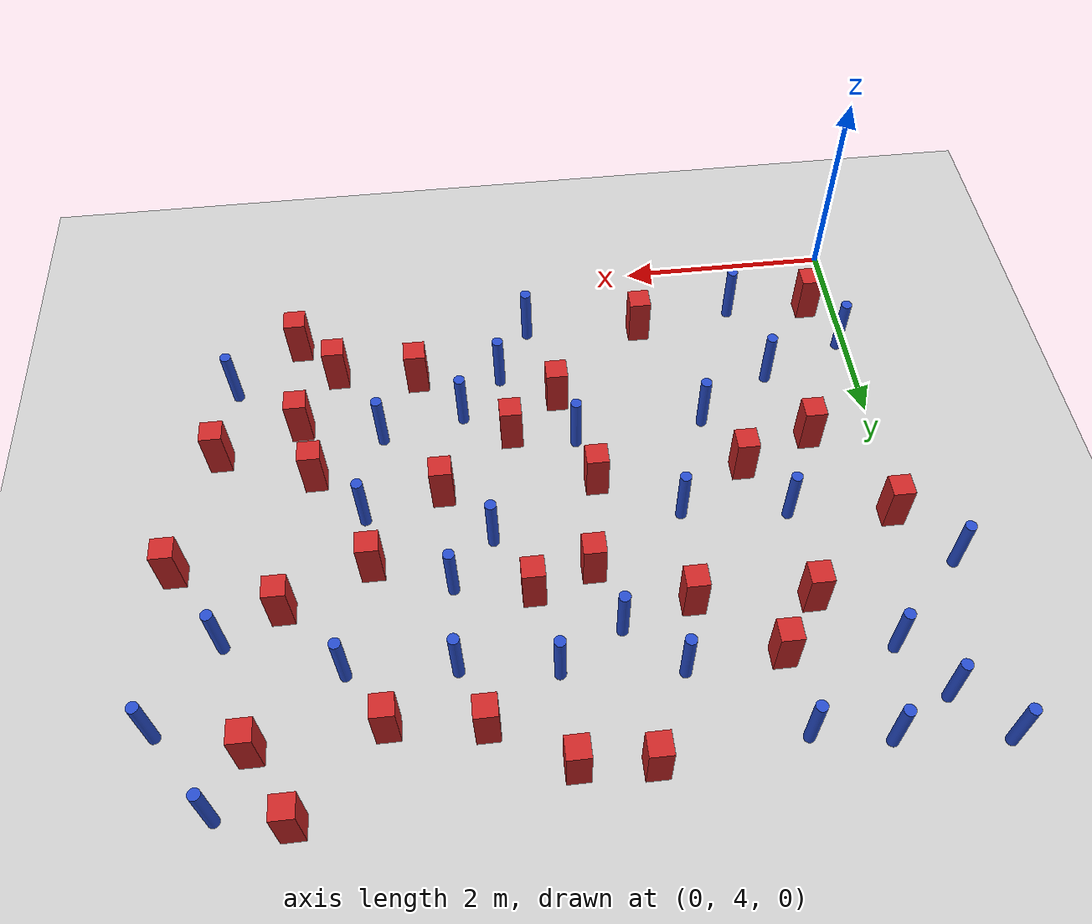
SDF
<sdf version="1.6">
 <world name="default">
  <model name="ground_plane">
   <static>1</static>
   <link name="link">
    <collision name="collision">
     <geometry><plane><normal>0 0 1</normal><size>100 100</size></plane></geometry>
     <surface><friction><ode><mu>100</mu><mu2>50</mu2></ode></friction></surface>
    </collision>
    <visual name="visual">
     <cast_shadows>0</cast_shadows>
     <geometry><plane><normal>0 0 1</normal><size>100 100</size></plane></geometry>
     <material>
      <ambient>1.0 1.0 1.0 1.0</ambient>
      <diffuse>0.8 0.8 0.8 1.0</diffuse>
      <specular>0.01 0.01 0.01 1.000000</specular>
     </material>
    </visual>
   </link>
  </model>
  <model name="square_post_obstacle1">
   <static>true</static>
   <pose>4.21814063579 5.20997985435 -6.11067671241e-07 -5.50515727128e-06 -8.79689657224e-07 2.37013304536e-05</pose>
   <link name="link">
    <pose>0 0 0.25 0 -0 0</pose>
    <inertial>
     <mass>100</mass>
     <inertia>
      <ixx>0.166667</ixx>
      <ixy>0</ixy>
      <ixz>0</ixz>
      <iyy>0.166667</iyy>
      <iyz>0</iyz>
      <izz>0.166667</izz>
     </inertia>
    </inertial>
    <collision name="collision"><geometry><box><size>.2 .2 .5</size></box></geometry></collision>
    <visual name="visual">
     <geometry><box><size>.2 .2 .5</size></box></geometry>
     <material>
      <script><name>Gazebo/Red</name><uri>file://media/materials/scripts/gazebo.material</uri></script>
     </material>
    </visual>
   </link>
  </model>
  <model name="square_post_obstacle2">
   <static>true</static>
   <pose>0.289632002403 4.67580909844 -6.11067671241e-07 -5.50515727128e-06 -8.79689657224e-07 2.37013304536e-05</pose>
   <link name="link">
    <pose>0 0 0.25 0 -0 0</pose>
    <inertial>
     <mass>100</mass>
     <inertia>
      <ixx>0.166667</ixx>
      <ixy>0</ixy>
      <ixz>0</ixz>
      <iyy>0.166667</iyy>
      <iyz>0</iyz>
      <izz>0.166667</izz>
     </inertia>
    </inertial>
    <collision name="collision"><geometry><box><size>.2 .2 .5</size></box></geometry></collision>
    <visual name="visual">
     <geometry><box><size>.2 .2 .5</size></box></geometry>
     <material>
      <script><name>Gazebo/Red</name><uri>file://media/materials/scripts/gazebo.material</uri></script>
     </material>
    </visual>
   </link>
  </model>
  <model name="pole_obstacle6">
   <static>true</static>
   <pose>2.6191119911 8.05276596261 -9.4761961606e-06 5.49618799729e-07 2.36310414e-07 -1.55090534824e-07</pose>
   <link name="link">
    <pose>0 0 0.3 0 -0 0</pose>
    <inertial>
     <mass>1</mass>
     <inertia><ixx>0.145833</ixx><ixy>0</ixy><ixz>0</ixz><iyy>0.145833</iyy><iyz>0</iyz><izz>0.125</izz></inertia>
    </inertial>
    <collision name="collision">
     <geometry><cylinder><radius>0.05</radius><length>.6</length></cylinder></geometry>
    </collision>
    <visual name="visual">
     <geometry><cylinder><radius>0.05</radius><length>.6</length></cylinder></geometry>
     <material>
      <script><name>Gazebo/Blue</name><uri>file://media/materials/scripts/gazebo.material</uri></script>
     </material>
    </visual>
   </link>
  </model>
  <model name="square_post_obstacle11">
   <static>true</static>
   <pose>4.56887856863 8.70819222688 -6.11067671241e-07 -5.50515727128e-06 -8.79689657224e-07 2.37013304536e-05</pose>
   <link name="link">
    <pose>0 0 0.25 0 -0 0</pose>
    <inertial>
     <mass>100</mass>
     <inertia>
      <ixx>0.166667</ixx>
      <ixy>0</ixy>
      <ixz>0</ixz>
      <iyy>0.166667</iyy>
      <iyz>0</iyz>
      <izz>0.166667</izz>
     </inertia>
    </inertial>
    <collision name="collision"><geometry><box><size>.2 .2 .5</size></box></geometry></collision>
    <visual name="visual">
     <geometry><box><size>.2 .2 .5</size></box></geometry>
     <material>
      <script><name>Gazebo/Red</name><uri>file://media/materials/scripts/gazebo.material</uri></script>
     </material>
    </visual>
   </link>
  </model>
  <model name="pole_obstacle12">
   <static>true</static>
   <pose>3.99530567241 7.51076555983 -9.47619616065e-06 5.49618799737e-07 2.36310414049e-07 -1.55090534808e-07</pose>
   <link name="link">
    <pose>0 0 0.3 0 -0 0</pose>
    <inertial>
     <mass>1</mass>
     <inertia><ixx>0.145833</ixx><ixy>0</ixy><ixz>0</ixz><iyy>0.145833</iyy><iyz>0</iyz><izz>0.125</izz></inertia>
    </inertial>
    <collision name="collision">
     <geometry><cylinder><radius>0.05</radius><length>.6</length></cylinder></geometry>
    </collision>
    <visual name="visual">
     <geometry><cylinder><radius>0.05</radius><length>.6</length></cylinder></geometry>
     <material>
      <script><name>Gazebo/Blue</name><uri>file://media/materials/scripts/gazebo.material</uri></script>
     </material>
    </visual>
   </link>
  </model>
  <model name="pole_obstacle18">
   <static>true</static>
   <pose>6.40389700163 8.56753296409 -9.47619616065e-06 5.49618799737e-07 2.36310414065e-07 -1.55090534796e-07</pose>
   <link name="link">
    <pose>0 0 0.3 0 -0 0</pose>
    <inertial>
     <mass>1</mass>
     <inertia><ixx>0.145833</ixx><ixy>0</ixy><ixz>0</ixz><iyy>0.145833</iyy><iyz>0</iyz><izz>0.125</izz></inertia>
    </inertial>
    <collision name="collision">
     <geometry><cylinder><radius>0.05</radius><length>.6</length></cylinder></geometry>
    </collision>
    <visual name="visual">
     <geometry><cylinder><radius>0.05</radius><length>.6</length></cylinder></geometry>
     <material>
      <script><name>Gazebo/Blue</name><uri>file://media/materials/scripts/gazebo.material</uri></script>
     </material>
    </visual>
   </link>
  </model>
  <model name="pole_obstacle21">
   <static>true</static>
   <pose>0.641235746717 9.23536157444 -9.47619616065e-06 5.49618799737e-07 2.36310414038e-07 -1.55090534813e-07</pose>
   <link name="link">
    <pose>0 0 0.3 0 -0 0</pose>
    <inertial>
     <mass>1</mass>
     <inertia><ixx>0.145833</ixx><ixy>0</ixy><ixz>0</ixz><iyy>0.145833</iyy><iyz>0</iyz><izz>0.125</izz></inertia>
    </inertial>
    <collision name="collision">
     <geometry><cylinder><radius>0.05</radius><length>.6</length></cylinder></geometry>
    </collision>
    <visual name="visual">
     <geometry><cylinder><radius>0.05</radius><length>.6</length></cylinder></geometry>
     <material>
      <script><name>Gazebo/Blue</name><uri>file://media/materials/scripts/gazebo.material</uri></script>
     </material>
    </visual>
   </link>
  </model>
  <model name="square_post_obstacle31">
   <static>true</static>
   <pose>0.0897120754835 7.195946467 -6.11067671241e-07 -5.50515727128e-06 -8.79689657224e-07 2.37013304536e-05</pose>
   <link name="link">
    <pose>0 0 0.25 0 -0 0</pose>
    <inertial>
     <mass>100</mass>
     <inertia>
      <ixx>0.166667</ixx>
      <ixy>0</ixy>
      <ixz>0</ixz>
      <iyy>0.166667</iyy>
      <iyz>0</iyz>
      <izz>0.166667</izz>
     </inertia>
    </inertial>
    <collision name="collision"><geometry><box><size>.2 .2 .5</size></box></geometry></collision>
    <visual name="visual">
     <geometry><box><size>.2 .2 .5</size></box></geometry>
     <material>
      <script><name>Gazebo/Red</name><uri>file://media/materials/scripts/gazebo.material</uri></script>
     </material>
    </visual>
   </link>
  </model>
  <model name="pole_obstacle30">
   <static>true</static>
   <pose>2.15917152558 8.4823073281 -9.4761961606e-06 5.49618799729e-07 2.36310414e-07 -1.55090534824e-07</pose>
   <link name="link">
    <pose>0 0 0.3 0 -0 0</pose>
    <inertial>
     <mass>1</mass>
     <inertia><ixx>0.145833</ixx><ixy>0</ixy><ixz>0</ixz><iyy>0.145833</iyy><iyz>0</iyz><izz>0.125</izz></inertia>
    </inertial>
    <collision name="collision">
     <geometry><cylinder><radius>0.05</radius><length>.6</length></cylinder></geometry>
    </collision>
    <visual name="visual">
     <geometry><cylinder><radius>0.05</radius><length>.6</length></cylinder></geometry>
     <material>
      <script><name>Gazebo/Blue</name><uri>file://media/materials/scripts/gazebo.material</uri></script>
     </material>
    </visual>
   </link>
  </model>
  <model name="pole_obstacle31">
   <static>true</static>
   <pose>3.17316632364 8.38446025669 -9.4761961606e-06 5.49618799729e-07 2.36310414e-07 -1.55090534824e-07</pose>
   <link name="link">
    <pose>0 0 0.3 0 -0 0</pose>
    <inertial>
     <mass>1</mass>
     <inertia><ixx>0.145833</ixx><ixy>0</ixy><ixz>0</ixz><iyy>0.145833</iyy><iyz>0</iyz><izz>0.125</izz></inertia>
    </inertial>
    <collision name="collision">
     <geometry><cylinder><radius>0.05</radius><length>.6</length></cylinder></geometry>
    </collision>
    <visual name="visual">
     <geometry><cylinder><radius>0.05</radius><length>.6</length></cylinder></geometry>
     <material>
      <script><name>Gazebo/Blue</name><uri>file://media/materials/scripts/gazebo.material</uri></script>
     </material>
    </visual>
   </link>
  </model>
  <model name="square_post_obstacle39">
   <static>true</static>
   <pose>1.34586054182 8.4341368042 -6.11067671241e-07 -5.50515727128e-06 -8.79689657224e-07 2.37013304536e-05</pose>
   <link name="link">
    <pose>0 0 0.25 0 -0 0</pose>
    <inertial>
     <mass>100</mass>
     <inertia>
      <ixx>0.166667</ixx>
      <ixy>0</ixy>
      <ixz>0</ixz>
      <iyy>0.166667</iyy>
      <iyz>0</iyz>
      <izz>0.166667</izz>
     </inertia>
    </inertial>
    <collision name="collision"><geometry><box><size>.2 .2 .5</size></box></geometry></collision>
    <visual name="visual">
     <geometry><box><size>.2 .2 .5</size></box></geometry>
     <material>
      <script><name>Gazebo/Red</name><uri>file://media/materials/scripts/gazebo.material</uri></script>
     </material>
    </visual>
   </link>
  </model>
  <model name="square_post_obstacle56">
   <static>true</static>
   <pose>3.31956416271 7.64463306911 -6.11067671241e-07 -5.50515727128e-06 -8.79689657224e-07 2.37013304536e-05</pose>
   <link name="link">
    <pose>0 0 0.25 0 -0 0</pose>
    <inertial>
     <mass>100</mass>
     <inertia>
      <ixx>0.166667</ixx>
      <ixy>0</ixy>
      <ixz>0</ixz>
      <iyy>0.166667</iyy>
      <iyz>0</iyz>
      <izz>0.166667</izz>
     </inertia>
    </inertial>
    <collision name="collision"><geometry><box><size>.2 .2 .5</size></box></geometry></collision>
    <visual name="visual">
     <geometry><box><size>.2 .2 .5</size></box></geometry>
     <material>
      <script><name>Gazebo/Red</name><uri>file://media/materials/scripts/gazebo.material</uri></script>
     </material>
    </visual>
   </link>
  </model>
  <model name="square_post_obstacle60">
   <static>true</static>
   <pose>4.03586952808 6.55499411581 -6.11067671241e-07 -5.50515727128e-06 -8.79689657224e-07 2.37013304536e-05</pose>
   <link name="link">
    <pose>0 0 0.25 0 -0 0</pose>
    <inertial>
     <mass>100</mass>
     <inertia>
      <ixx>0.166667</ixx>
      <ixy>0</ixy>
      <ixz>0</ixz>
      <iyy>0.166667</iyy>
      <iyz>0</iyz>
      <izz>0.166667</izz>
     </inertia>
    </inertial>
    <collision name="collision"><geometry><box><size>.2 .2 .5</size></box></geometry></collision>
    <visual name="visual">
     <geometry><box><size>.2 .2 .5</size></box></geometry>
     <material>
      <script><name>Gazebo/Red</name><uri>file://media/materials/scripts/gazebo.material</uri></script>
     </material>
    </visual>
   </link>
  </model>
  <model name="pole_obstacle56">
   <static>true</static>
   <pose>1.94134457841 6.97123709773 -9.47619616065e-06 5.49618799737e-07 2.36310414061e-07 -1.550905348e-07</pose>
   <link name="link">
    <pose>0 0 0.3 0 -0 0</pose>
    <inertial>
     <mass>1</mass>
     <inertia><ixx>0.145833</ixx><ixy>0</ixy><ixz>0</ixz><iyy>0.145833</iyy><iyz>0</iyz><izz>0.125</izz></inertia>
    </inertial>
    <collision name="collision">
     <geometry><cylinder><radius>0.05</radius><length>.6</length></cylinder></geometry>
    </collision>
    <visual name="visual">
     <geometry><cylinder><radius>0.05</radius><length>.6</length></cylinder></geometry>
     <material>
      <script><name>Gazebo/Blue</name><uri>file://media/materials/scripts/gazebo.material</uri></script>
     </material>
    </visual>
   </link>
  </model>
  <model name="square_post_obstacle68">
   <static>true</static>
   <pose>2.6563100234 6.57647170805 -6.11067671241e-07 -5.50515727128e-06 -8.79689657224e-07 2.37013304536e-05</pose>
   <link name="link">
    <pose>0 0 0.25 0 -0 0</pose>
    <inertial>
     <mass>100</mass>
     <inertia>
      <ixx>0.166667</ixx>
      <ixy>0</ixy>
      <ixz>0</ixz>
      <iyy>0.166667</iyy>
      <iyz>0</iyz>
      <izz>0.166667</izz>
     </inertia>
    </inertial>
    <collision name="collision"><geometry><box><size>.2 .2 .5</size></box></geometry></collision>
    <visual name="visual">
     <geometry><box><size>.2 .2 .5</size></box></geometry>
     <material>
      <script><name>Gazebo/Red</name><uri>file://media/materials/scripts/gazebo.material</uri></script>
     </material>
    </visual>
   </link>
  </model>
  <model name="square_post_obstacle69">
   <static>true</static>
   <pose>2.7925862902 7.47766197221 -6.11067671241e-07 -5.50515727128e-06 -8.79689657224e-07 2.37013304536e-05</pose>
   <link name="link">
    <pose>0 0 0.25 0 -0 0</pose>
    <inertial>
     <mass>100</mass>
     <inertia>
      <ixx>0.166667</ixx>
      <ixy>0</ixy>
      <ixz>0</ixz>
      <iyy>0.166667</iyy>
      <iyz>0</iyz>
      <izz>0.166667</izz>
     </inertia>
    </inertial>
    <collision name="collision"><geometry><box><size>.2 .2 .5</size></box></geometry></collision>
    <visual name="visual">
     <geometry><box><size>.2 .2 .5</size></box></geometry>
     <material>
      <script><name>Gazebo/Red</name><uri>file://media/materials/scripts/gazebo.material</uri></script>
     </material>
    </visual>
   </link>
  </model>
  <model name="square_post_obstacle72">
   <static>true</static>
   <pose>5.31310432078 5.67646394308 -6.11067671241e-07 -5.50515727128e-06 -8.79689657224e-07 2.37013304536e-05</pose>
   <link name="link">
    <pose>0 0 0.25 0 -0 0</pose>
    <inertial>
     <mass>100</mass>
     <inertia>
      <ixx>0.166667</ixx>
      <ixy>0</ixy>
      <ixz>0</ixz>
      <iyy>0.166667</iyy>
      <iyz>0</iyz>
      <izz>0.166667</izz>
     </inertia>
    </inertial>
    <collision name="collision"><geometry><box><size>.2 .2 .5</size></box></geometry></collision>
    <visual name="visual">
     <geometry><box><size>.2 .2 .5</size></box></geometry>
     <material>
      <script><name>Gazebo/Red</name><uri>file://media/materials/scripts/gazebo.material</uri></script>
     </material>
    </visual>
   </link>
  </model>
  <model name="square_post_obstacle76">
   <static>true</static>
   <pose>2.01929305984 4.78799998393 -6.11067671241e-07 -5.50515727128e-06 -8.79689657224e-07 2.37013304536e-05</pose>
   <link name="link">
    <pose>0 0 0.25 0 -0 0</pose>
    <inertial>
     <mass>100</mass>
     <inertia>
      <ixx>0.166667</ixx>
      <ixy>0</ixy>
      <ixz>0</ixz>
      <iyy>0.166667</iyy>
      <iyz>0</iyz>
      <izz>0.166667</izz>
     </inertia>
    </inertial>
    <collision name="collision"><geometry><box><size>.2 .2 .5</size></box></geometry></collision>
    <visual name="visual">
     <geometry><box><size>.2 .2 .5</size></box></geometry>
     <material>
      <script><name>Gazebo/Red</name><uri>file://media/materials/scripts/gazebo.material</uri></script>
     </material>
    </visual>
   </link>
  </model>
  <model name="pole_obstacle75">
   <static>true</static>
   <pose>3.12045966322 4.70689861653 -9.47619616065e-06 5.49618799738e-07 2.3631041406e-07 -1.55090534801e-07</pose>
   <link name="link">
    <pose>0 0 0.3 0 -0 0</pose>
    <inertial>
     <mass>1</mass>
     <inertia><ixx>0.145833</ixx><ixy>0</ixy><ixz>0</ixz><iyy>0.145833</iyy><iyz>0</iyz><izz>0.125</izz></inertia>
    </inertial>
    <collision name="collision">
     <geometry><cylinder><radius>0.05</radius><length>.6</length></cylinder></geometry>
    </collision>
    <visual name="visual">
     <geometry><cylinder><radius>0.05</radius><length>.6</length></cylinder></geometry>
     <material>
      <script><name>Gazebo/Blue</name><uri>file://media/materials/scripts/gazebo.material</uri></script>
     </material>
    </visual>
   </link>
  </model>
  <model name="pole_obstacle78">
   <static>true</static>
   <pose>0.412155040928 8.45496438069 -9.47619616065e-06 5.49618799737e-07 2.36310414031e-07 -1.55090534818e-07</pose>
   <link name="link">
    <pose>0 0 0.3 0 -0 0</pose>
    <inertial>
     <mass>1</mass>
     <inertia><ixx>0.145833</ixx><ixy>0</ixy><ixz>0</ixz><iyy>0.145833</iyy><iyz>0</iyz><izz>0.125</izz></inertia>
    </inertial>
    <collision name="collision">
     <geometry><cylinder><radius>0.05</radius><length>.6</length></cylinder></geometry>
    </collision>
    <visual name="visual">
     <geometry><cylinder><radius>0.05</radius><length>.6</length></cylinder></geometry>
     <material>
      <script><name>Gazebo/Blue</name><uri>file://media/materials/scripts/gazebo.material</uri></script>
     </material>
    </visual>
   </link>
  </model>
  <model name="pole_obstacle81">
   <static>true</static>
   <pose>5.94038217425 5.18865233766 -9.47619616065e-06 5.49618799737e-07 2.36310414037e-07 -1.55090534814e-07</pose>
   <link name="link">
    <pose>0 0 0.3 0 -0 0</pose>
    <inertial>
     <mass>1</mass>
     <inertia><ixx>0.145833</ixx><ixy>0</ixy><ixz>0</ixz><iyy>0.145833</iyy><iyz>0</iyz><izz>0.125</izz></inertia>
    </inertial>
    <collision name="collision">
     <geometry><cylinder><radius>0.05</radius><length>.6</length></cylinder></geometry>
    </collision>
    <visual name="visual">
     <geometry><cylinder><radius>0.05</radius><length>.6</length></cylinder></geometry>
     <material>
      <script><name>Gazebo/Blue</name><uri>file://media/materials/scripts/gazebo.material</uri></script>
     </material>
    </visual>
   </link>
  </model>
  <model name="pole_obstacle86">
   <static>true</static>
   <pose>0.0775980607989 5.18231228835 -9.47619616065e-06 5.49618799737e-07 2.36310414063e-07 -1.55090534799e-07</pose>
   <link name="link">
    <pose>0 0 0.3 0 -0 0</pose>
    <inertial>
     <mass>1</mass>
     <inertia><ixx>0.145833</ixx><ixy>0</ixy><ixz>0</ixz><iyy>0.145833</iyy><iyz>0</iyz><izz>0.125</izz></inertia>
    </inertial>
    <collision name="collision">
     <geometry><cylinder><radius>0.05</radius><length>.6</length></cylinder></geometry>
    </collision>
    <visual name="visual">
     <geometry><cylinder><radius>0.05</radius><length>.6</length></cylinder></geometry>
     <material>
      <script><name>Gazebo/Blue</name><uri>file://media/materials/scripts/gazebo.material</uri></script>
     </material>
    </visual>
   </link>
  </model>
  <model name="pole_obstacle89">
   <static>true</static>
   <pose>4.56449132217 5.86266243301 -9.47619616065e-06 5.49618799737e-07 2.36310414037e-07 -1.55090534814e-07</pose>
   <link name="link">
    <pose>0 0 0.3 0 -0 0</pose>
    <inertial>
     <mass>1</mass>
     <inertia><ixx>0.145833</ixx><ixy>0</ixy><ixz>0</ixz><iyy>0.145833</iyy><iyz>0</iyz><izz>0.125</izz></inertia>
    </inertial>
    <collision name="collision">
     <geometry><cylinder><radius>0.05</radius><length>.6</length></cylinder></geometry>
    </collision>
    <visual name="visual">
     <geometry><cylinder><radius>0.05</radius><length>.6</length></cylinder></geometry>
     <material>
      <script><name>Gazebo/Blue</name><uri>file://media/materials/scripts/gazebo.material</uri></script>
     </material>
    </visual>
   </link>
  </model>
  <model name="pole_obstacle90">
   <static>true</static>
   <pose>1.57973627634 5.97620144443 -9.47619616065e-06 5.49618799737e-07 2.36310414061e-07 -1.550905348e-07</pose>
   <link name="link">
    <pose>0 0 0.3 0 -0 0</pose>
    <inertial>
     <mass>1</mass>
     <inertia><ixx>0.145833</ixx><ixy>0</ixy><ixz>0</ixz><iyy>0.145833</iyy><iyz>0</iyz><izz>0.125</izz></inertia>
    </inertial>
    <collision name="collision">
     <geometry><cylinder><radius>0.05</radius><length>.6</length></cylinder></geometry>
    </collision>
    <visual name="visual">
     <geometry><cylinder><radius>0.05</radius><length>.6</length></cylinder></geometry>
     <material>
      <script><name>Gazebo/Blue</name><uri>file://media/materials/scripts/gazebo.material</uri></script>
     </material>
    </visual>
   </link>
  </model>
  <model name="square_post_obstacle85">
   <static>true</static>
   <pose>3.37456271426 5.97585825033 -6.11067671241e-07 -5.50515727128e-06 -8.79689657224e-07 2.37013304536e-05</pose>
   <link name="link">
    <pose>0 0 0.25 0 -0 0</pose>
    <inertial>
     <mass>100</mass>
     <inertia>
      <ixx>0.166667</ixx>
      <ixy>0</ixy>
      <ixz>0</ixz>
      <iyy>0.166667</iyy>
      <iyz>0</iyz>
      <izz>0.166667</izz>
     </inertia>
    </inertial>
    <collision name="collision"><geometry><box><size>.2 .2 .5</size></box></geometry></collision>
    <visual name="visual">
     <geometry><box><size>.2 .2 .5</size></box></geometry>
     <material>
      <script><name>Gazebo/Red</name><uri>file://media/materials/scripts/gazebo.material</uri></script>
     </material>
    </visual>
   </link>
  </model>
  <model name="pole_obstacle103">
   <static>true</static>
   <pose>1.28424408077 9.12927189484 -9.47619616065e-06 5.49618799737e-07 2.36310414046e-07 -1.55090534809e-07</pose>
   <link name="link">
    <pose>0 0 0.3 0 -0 0</pose>
    <inertial>
     <mass>1</mass>
     <inertia><ixx>0.145833</ixx><ixy>0</ixy><ixz>0</ixz><iyy>0.145833</iyy><iyz>0</iyz><izz>0.125</izz></inertia>
    </inertial>
    <collision name="collision">
     <geometry><cylinder><radius>0.05</radius><length>.6</length></cylinder></geometry>
    </collision>
    <visual name="visual">
     <geometry><cylinder><radius>0.05</radius><length>.6</length></cylinder></geometry>
     <material>
      <script><name>Gazebo/Blue</name><uri>file://media/materials/scripts/gazebo.material</uri></script>
     </material>
    </visual>
   </link>
  </model>
  <model name="pole_obstacle105">
   <static>true</static>
   <pose>1.07703947547 4.63694346206 -9.47619616065e-06 5.49618799737e-07 2.36310414061e-07 -1.550905348e-07</pose>
   <link name="link">
    <pose>0 0 0.3 0 -0 0</pose>
    <inertial>
     <mass>1</mass>
     <inertia><ixx>0.145833</ixx><ixy>0</ixy><ixz>0</ixz><iyy>0.145833</iyy><iyz>0</iyz><izz>0.125</izz></inertia>
    </inertial>
    <collision name="collision">
     <geometry><cylinder><radius>0.05</radius><length>.6</length></cylinder></geometry>
    </collision>
    <visual name="visual">
     <geometry><cylinder><radius>0.05</radius><length>.6</length></cylinder></geometry>
     <material>
      <script><name>Gazebo/Blue</name><uri>file://media/materials/scripts/gazebo.material</uri></script>
     </material>
    </visual>
   </link>
  </model>
  <model name="pole_obstacle113">
   <static>true</static>
   <pose>3.99469610217 8.27308721348 -9.4761961606e-06 5.49618799729e-07 2.36310414e-07 -1.55090534824e-07</pose>
   <link name="link">
    <pose>0 0 0.3 0 -0 0</pose>
    <inertial>
     <mass>1</mass>
     <inertia><ixx>0.145833</ixx><ixy>0</ixy><ixz>0</ixz><iyy>0.145833</iyy><iyz>0</iyz><izz>0.125</izz></inertia>
    </inertial>
    <collision name="collision">
     <geometry><cylinder><radius>0.05</radius><length>.6</length></cylinder></geometry>
    </collision>
    <visual name="visual">
     <geometry><cylinder><radius>0.05</radius><length>.6</length></cylinder></geometry>
     <material>
      <script><name>Gazebo/Blue</name><uri>file://media/materials/scripts/gazebo.material</uri></script>
     </material>
    </visual>
   </link>
  </model>
  <model name="square_post_obstacle100">
   <static>true</static>
   <pose>5.17600023619 6.26233752681 -6.11067671241e-07 -5.50515727128e-06 -8.79689657224e-07 2.37013304536e-05</pose>
   <link name="link">
    <pose>0 0 0.25 0 -0 0</pose>
    <inertial>
     <mass>100</mass>
     <inertia>
      <ixx>0.166667</ixx>
      <ixy>0</ixy>
      <ixz>0</ixz>
      <iyy>0.166667</iyy>
      <iyz>0</iyz>
      <izz>0.166667</izz>
     </inertia>
    </inertial>
    <collision name="collision"><geometry><box><size>.2 .2 .5</size></box></geometry></collision>
    <visual name="visual">
     <geometry><box><size>.2 .2 .5</size></box></geometry>
     <material>
      <script><name>Gazebo/Red</name><uri>file://media/materials/scripts/gazebo.material</uri></script>
     </material>
    </visual>
   </link>
  </model>
  <model name="pole_obstacle126">
   <static>true</static>
   <pose>-0.289484501214 9.33063844215 -9.47619616065e-06 5.49618799738e-07 2.36310414034e-07 -1.55090534817e-07</pose>
   <link name="link">
    <pose>0 0 0.3 0 -0 0</pose>
    <inertial>
     <mass>1</mass>
     <inertia><ixx>0.145833</ixx><ixy>0</ixy><ixz>0</ixz><iyy>0.145833</iyy><iyz>0</iyz><izz>0.125</izz></inertia>
    </inertial>
    <collision name="collision">
     <geometry><cylinder><radius>0.05</radius><length>.6</length></cylinder></geometry>
    </collision>
    <visual name="visual">
     <geometry><cylinder><radius>0.05</radius><length>.6</length></cylinder></geometry>
     <material>
      <script><name>Gazebo/Blue</name><uri>file://media/materials/scripts/gazebo.material</uri></script>
     </material>
    </visual>
   </link>
  </model>
  <model name="pole_obstacle130">
   <static>true</static>
   <pose>4.90978278769 8.20766103213 -9.47619616065e-06 5.49618799737e-07 2.36310414065e-07 -1.55090534796e-07</pose>
   <link name="link">
    <pose>0 0 0.3 0 -0 0</pose>
    <inertial>
     <mass>1</mass>
     <inertia><ixx>0.145833</ixx><ixy>0</ixy><ixz>0</ixz><iyy>0.145833</iyy><iyz>0</iyz><izz>0.125</izz></inertia>
    </inertial>
    <collision name="collision">
     <geometry><cylinder><radius>0.05</radius><length>.6</length></cylinder></geometry>
    </collision>
    <visual name="visual">
     <geometry><cylinder><radius>0.05</radius><length>.6</length></cylinder></geometry>
     <material>
      <script><name>Gazebo/Blue</name><uri>file://media/materials/scripts/gazebo.material</uri></script>
     </material>
    </visual>
   </link>
  </model>
  <model name="pole_obstacle133">
   <static>true</static>
   <pose>4.73835549918 6.73063775873 -9.47619616065e-06 5.49618799737e-07 2.36310414037e-07 -1.55090534814e-07</pose>
   <link name="link">
    <pose>0 0 0.3 0 -0 0</pose>
    <inertial>
     <mass>1</mass>
     <inertia><ixx>0.145833</ixx><ixy>0</ixy><ixz>0</ixz><iyy>0.145833</iyy><iyz>0</iyz><izz>0.125</izz></inertia>
    </inertial>
    <collision name="collision">
     <geometry><cylinder><radius>0.05</radius><length>.6</length></cylinder></geometry>
    </collision>
    <visual name="visual">
     <geometry><cylinder><radius>0.05</radius><length>.6</length></cylinder></geometry>
     <material>
      <script><name>Gazebo/Blue</name><uri>file://media/materials/scripts/gazebo.material</uri></script>
     </material>
    </visual>
   </link>
  </model>
  <model name="square_post_obstacle118">
   <static>true</static>
   <pose>6.36175905043 7.12779649466 -6.11067671241e-07 -5.50515727128e-06 -8.79689657224e-07 2.37013304536e-05</pose>
   <link name="link">
    <pose>0 0 0.25 0 -0 0</pose>
    <inertial>
     <mass>100</mass>
     <inertia>
      <ixx>0.166667</ixx>
      <ixy>0</ixy>
      <ixz>0</ixz>
      <iyy>0.166667</iyy>
      <iyz>0</iyz>
      <izz>0.166667</izz>
     </inertia>
    </inertial>
    <collision name="collision"><geometry><box><size>.2 .2 .5</size></box></geometry></collision>
    <visual name="visual">
     <geometry><box><size>.2 .2 .5</size></box></geometry>
     <material>
      <script><name>Gazebo/Red</name><uri>file://media/materials/scripts/gazebo.material</uri></script>
     </material>
    </visual>
   </link>
  </model>
  <model name="pole_obstacle139">
   <static>true</static>
   <pose>0.871866928023 5.51805575132 -9.47619616065e-06 5.49618799737e-07 2.36310414065e-07 -1.55090534796e-07</pose>
   <link name="link">
    <pose>0 0 0.3 0 -0 0</pose>
    <inertial>
     <mass>1</mass>
     <inertia><ixx>0.145833</ixx><ixy>0</ixy><ixz>0</ixz><iyy>0.145833</iyy><iyz>0</iyz><izz>0.125</izz></inertia>
    </inertial>
    <collision name="collision">
     <geometry><cylinder><radius>0.05</radius><length>.6</length></cylinder></geometry>
    </collision>
    <visual name="visual">
     <geometry><cylinder><radius>0.05</radius><length>.6</length></cylinder></geometry>
     <material>
      <script><name>Gazebo/Blue</name><uri>file://media/materials/scripts/gazebo.material</uri></script>
     </material>
    </visual>
   </link>
  </model>
  <model name="square_post_obstacle125">
   <static>true</static>
   <pose>1.3121779296 6.55784293067 -6.11067671241e-07 -5.50515727128e-06 -8.79689657224e-07 2.37013304536e-05</pose>
   <link name="link">
    <pose>0 0 0.25 0 -0 0</pose>
    <inertial>
     <mass>100</mass>
     <inertia>
      <ixx>0.166667</ixx>
      <ixy>0</ixy>
      <ixz>0</ixz>
      <iyy>0.166667</iyy>
      <iyz>0</iyz>
      <izz>0.166667</izz>
     </inertia>
    </inertial>
    <collision name="collision"><geometry><box><size>.2 .2 .5</size></box></geometry></collision>
    <visual name="visual">
     <geometry><box><size>.2 .2 .5</size></box></geometry>
     <material>
      <script><name>Gazebo/Red</name><uri>file://media/materials/scripts/gazebo.material</uri></script>
     </material>
    </visual>
   </link>
  </model>
  <model name="square_post_obstacle127">
   <static>true</static>
   <pose>4.67336331989 7.25202883478 -6.11067671241e-07 -5.50515727128e-06 -8.79689657224e-07 2.37013304536e-05</pose>
   <link name="link">
    <pose>0 0 0.25 0 -0 0</pose>
    <inertial>
     <mass>100</mass>
     <inertia>
      <ixx>0.166667</ixx>
      <ixy>0</ixy>
      <ixz>0</ixz>
      <iyy>0.166667</iyy>
      <iyz>0</iyz>
      <izz>0.166667</izz>
     </inertia>
    </inertial>
    <collision name="collision"><geometry><box><size>.2 .2 .5</size></box></geometry></collision>
    <visual name="visual">
     <geometry><box><size>.2 .2 .5</size></box></geometry>
     <material>
      <script><name>Gazebo/Red</name><uri>file://media/materials/scripts/gazebo.material</uri></script>
     </material>
    </visual>
   </link>
  </model>
  <model name="square_post_obstacle130">
   <static>true</static>
   <pose>4.98051862851 5.08406700693 -6.11067671241e-07 -5.50515727128e-06 -8.79689657224e-07 2.37013304536e-05</pose>
   <link name="link">
    <pose>0 0 0.25 0 -0 0</pose>
    <inertial>
     <mass>100</mass>
     <inertia>
      <ixx>0.166667</ixx>
      <ixy>0</ixy>
      <ixz>0</ixz>
      <iyy>0.166667</iyy>
      <iyz>0</iyz>
      <izz>0.166667</izz>
     </inertia>
    </inertial>
    <collision name="collision"><geometry><box><size>.2 .2 .5</size></box></geometry></collision>
    <visual name="visual">
     <geometry><box><size>.2 .2 .5</size></box></geometry>
     <material>
      <script><name>Gazebo/Red</name><uri>file://media/materials/scripts/gazebo.material</uri></script>
     </material>
    </visual>
   </link>
  </model>
  <model name="square_post_obstacle133">
   <static>true</static>
   <pose>0.984116169351 7.95245733006 -6.11067671241e-07 -5.50515727128e-06 -8.79689657224e-07 2.37013304536e-05</pose>
   <link name="link">
    <pose>0 0 0.25 0 -0 0</pose>
    <inertial>
     <mass>100</mass>
     <inertia>
      <ixx>0.166667</ixx>
      <ixy>0</ixy>
      <ixz>0</ixz>
      <iyy>0.166667</iyy>
      <iyz>0</iyz>
      <izz>0.166667</izz>
     </inertia>
    </inertial>
    <collision name="collision"><geometry><box><size>.2 .2 .5</size></box></geometry></collision>
    <visual name="visual">
     <geometry><box><size>.2 .2 .5</size></box></geometry>
     <material>
      <script><name>Gazebo/Red</name><uri>file://media/materials/scripts/gazebo.material</uri></script>
     </material>
    </visual>
   </link>
  </model>
  <model name="square_post_obstacle140">
   <static>true</static>
   <pose>0.636666425567 6.28049247276 -6.11067671241e-07 -5.50515727128e-06 -8.79689657224e-07 2.37013304536e-05</pose>
   <link name="link">
    <pose>0 0 0.25 0 -0 0</pose>
    <inertial>
     <mass>100</mass>
     <inertia>
      <ixx>0.166667</ixx>
      <ixy>0</ixy>
      <ixz>0</ixz>
      <iyy>0.166667</iyy>
      <iyz>0</iyz>
      <izz>0.166667</izz>
     </inertia>
    </inertial>
    <collision name="collision"><geometry><box><size>.2 .2 .5</size></box></geometry></collision>
    <visual name="visual">
     <geometry><box><size>.2 .2 .5</size></box></geometry>
     <material>
      <script><name>Gazebo/Red</name><uri>file://media/materials/scripts/gazebo.material</uri></script>
     </material>
    </visual>
   </link>
  </model>
  <model name="square_post_obstacle149">
   <static>true</static>
   <pose>5.42467721662 7.58702638706 -6.11067671241e-07 -5.50515727128e-06 -8.79689657224e-07 2.37013304536e-05</pose>
   <link name="link">
    <pose>0 0 0.25 0 -0 0</pose>
    <inertial>
     <mass>100</mass>
     <inertia>
      <ixx>0.166667</ixx>
      <ixy>0</ixy>
      <ixz>0</ixz>
      <iyy>0.166667</iyy>
      <iyz>0</iyz>
      <izz>0.166667</izz>
     </inertia>
    </inertial>
    <collision name="collision"><geometry><box><size>.2 .2 .5</size></box></geometry></collision>
    <visual name="visual">
     <geometry><box><size>.2 .2 .5</size></box></geometry>
     <material>
      <script><name>Gazebo/Red</name><uri>file://media/materials/scripts/gazebo.material</uri></script>
     </material>
    </visual>
   </link>
  </model>
  <model name="pole_obstacle159">
   <static>true</static>
   <pose>3.43183956143 5.27513052993 -9.47619616065e-06 5.49618799738e-07 2.3631041406e-07 -1.55090534801e-07</pose>
   <link name="link">
    <pose>0 0 0.3 0 -0 0</pose>
    <inertial>
     <mass>1</mass>
     <inertia><ixx>0.145833</ixx><ixy>0</ixy><ixz>0</ixz><iyy>0.145833</iyy><iyz>0</iyz><izz>0.125</izz></inertia>
    </inertial>
    <collision name="collision">
     <geometry><cylinder><radius>0.05</radius><length>.6</length></cylinder></geometry>
    </collision>
    <visual name="visual">
     <geometry><cylinder><radius>0.05</radius><length>.6</length></cylinder></geometry>
     <material>
      <script><name>Gazebo/Blue</name><uri>file://media/materials/scripts/gazebo.material</uri></script>
     </material>
    </visual>
   </link>
  </model>
  <model name="pole_obstacle160">
   <static>true</static>
   <pose>2.78286728846 6.08071084958 -9.47619616065e-06 5.49618799738e-07 2.3631041406e-07 -1.55090534801e-07</pose>
   <link name="link">
    <pose>0 0 0.3 0 -0 0</pose>
    <inertial>
     <mass>1</mass>
     <inertia><ixx>0.145833</ixx><ixy>0</ixy><ixz>0</ixz><iyy>0.145833</iyy><iyz>0</iyz><izz>0.125</izz></inertia>
    </inertial>
    <collision name="collision">
     <geometry><cylinder><radius>0.05</radius><length>.6</length></cylinder></geometry>
    </collision>
    <visual name="visual">
     <geometry><cylinder><radius>0.05</radius><length>.6</length></cylinder></geometry>
     <material>
      <script><name>Gazebo/Blue</name><uri>file://media/materials/scripts/gazebo.material</uri></script>
     </material>
    </visual>
   </link>
  </model>
  <model name="pole_obstacle161">
   <static>true</static>
   <pose>-0.321533545676 7.72245529137 -9.47619616065e-06 5.49618799737e-07 2.36310414065e-07 -1.55090534796e-07</pose>
   <link name="link">
    <pose>0 0 0.3 0 -0 0</pose>
    <inertial>
     <mass>1</mass>
     <inertia><ixx>0.145833</ixx><ixy>0</ixy><ixz>0</ixz><iyy>0.145833</iyy><iyz>0</iyz><izz>0.125</izz></inertia>
    </inertial>
    <collision name="collision">
     <geometry><cylinder><radius>0.05</radius><length>.6</length></cylinder></geometry>
    </collision>
    <visual name="visual">
     <geometry><cylinder><radius>0.05</radius><length>.6</length></cylinder></geometry>
     <material>
      <script><name>Gazebo/Blue</name><uri>file://media/materials/scripts/gazebo.material</uri></script>
     </material>
    </visual>
   </link>
  </model>
  <model name="square_post_obstacle158">
   <static>true</static>
   <pose>5.28874963326 9.40298887251 -6.11067671241e-07 -5.50515727128e-06 -8.79689657224e-07 2.37013304536e-05</pose>
   <link name="link">
    <pose>0 0 0.25 0 -0 0</pose>
    <inertial>
     <mass>100</mass>
     <inertia>
      <ixx>0.166667</ixx>
      <ixy>0</ixy>
      <ixz>0</ixz>
      <iyy>0.166667</iyy>
      <iyz>0</iyz>
      <izz>0.166667</izz>
     </inertia>
    </inertial>
    <collision name="collision"><geometry><box><size>.2 .2 .5</size></box></geometry></collision>
    <visual name="visual">
     <geometry><box><size>.2 .2 .5</size></box></geometry>
     <material>
      <script><name>Gazebo/Red</name><uri>file://media/materials/scripts/gazebo.material</uri></script>
     </material>
    </visual>
   </link>
  </model>
  <model name="square_post_obstacle159">
   <static>true</static>
   <pose>2.51842246883 9.24488119361 -6.11067671241e-07 -5.50515727128e-06 -8.79689657224e-07 2.37013304536e-05</pose>
   <link name="link">
    <pose>0 0 0.25 0 -0 0</pose>
    <inertial>
     <mass>100</mass>
     <inertia>
      <ixx>0.166667</ixx>
      <ixy>0</ixy>
      <ixz>0</ixz>
      <iyy>0.166667</iyy>
      <iyz>0</iyz>
      <izz>0.166667</izz>
     </inertia>
    </inertial>
    <collision name="collision"><geometry><box><size>.2 .2 .5</size></box></geometry></collision>
    <visual name="visual">
     <geometry><box><size>.2 .2 .5</size></box></geometry>
     <material>
      <script><name>Gazebo/Red</name><uri>file://media/materials/scripts/gazebo.material</uri></script>
     </material>
    </visual>
   </link>
  </model>
  <model name="pole_obstacle167">
   <static>true</static>
   <pose>3.62254585139 7.07151400245 -9.47619616065e-06 5.49618799738e-07 2.3631041406e-07 -1.55090534801e-07</pose>
   <link name="link">
    <pose>0 0 0.3 0 -0 0</pose>
    <inertial>
     <mass>1</mass>
     <inertia><ixx>0.145833</ixx><ixy>0</ixy><ixz>0</ixz><iyy>0.145833</iyy><iyz>0</iyz><izz>0.125</izz></inertia>
    </inertial>
    <collision name="collision">
     <geometry><cylinder><radius>0.05</radius><length>.6</length></cylinder></geometry>
    </collision>
    <visual name="visual">
     <geometry><cylinder><radius>0.05</radius><length>.6</length></cylinder></geometry>
     <material>
      <script><name>Gazebo/Blue</name><uri>file://media/materials/scripts/gazebo.material</uri></script>
     </material>
    </visual>
   </link>
  </model>
  <model name="pole_obstacle174">
   <static>true</static>
   <pose>5.91270653223 7.85022225409 -9.47619616065e-06 5.49618799737e-07 2.36310414037e-07 -1.55090534814e-07</pose>
   <link name="link">
    <pose>0 0 0.3 0 -0 0</pose>
    <inertial>
     <mass>1</mass>
     <inertia><ixx>0.145833</ixx><ixy>0</ixy><ixz>0</ixz><iyy>0.145833</iyy><iyz>0</iyz><izz>0.125</izz></inertia>
    </inertial>
    <collision name="collision">
     <geometry><cylinder><radius>0.05</radius><length>.6</length></cylinder></geometry>
    </collision>
    <visual name="visual">
     <geometry><cylinder><radius>0.05</radius><length>.6</length></cylinder></geometry>
     <material>
      <script><name>Gazebo/Blue</name><uri>file://media/materials/scripts/gazebo.material</uri></script>
     </material>
    </visual>
   </link>
  </model>
  <model name="pole_obstacle175">
   <static>true</static>
   <pose>3.81057660415 5.69512127848 -9.47619616065e-06 5.49618799738e-07 2.3631041406e-07 -1.55090534801e-07</pose>
   <link name="link">
    <pose>0 0 0.3 0 -0 0</pose>
    <inertial>
     <mass>1</mass>
     <inertia><ixx>0.145833</ixx><ixy>0</ixy><ixz>0</ixz><iyy>0.145833</iyy><iyz>0</iyz><izz>0.125</izz></inertia>
    </inertial>
    <collision name="collision">
     <geometry><cylinder><radius>0.05</radius><length>.6</length></cylinder></geometry>
    </collision>
    <visual name="visual">
     <geometry><cylinder><radius>0.05</radius><length>.6</length></cylinder></geometry>
     <material>
      <script><name>Gazebo/Blue</name><uri>file://media/materials/scripts/gazebo.material</uri></script>
     </material>
    </visual>
   </link>
  </model>
  <model name="square_post_obstacle169">
   <static>true</static>
   <pose>5.34405870429 4.69186105788 -6.11067671241e-07 -5.50515727128e-06 -8.79689657224e-07 2.37013304536e-05</pose>
   <link name="link">
    <pose>0 0 0.25 0 -0 0</pose>
    <inertial>
     <mass>100</mass>
     <inertia>
      <ixx>0.166667</ixx>
      <ixy>0</ixy>
      <ixz>0</ixz>
      <iyy>0.166667</iyy>
      <iyz>0</iyz>
      <izz>0.166667</izz>
     </inertia>
    </inertial>
    <collision name="collision"><geometry><box><size>.2 .2 .5</size></box></geometry></collision>
    <visual name="visual">
     <geometry><box><size>.2 .2 .5</size></box></geometry>
     <material>
      <script><name>Gazebo/Red</name><uri>file://media/materials/scripts/gazebo.material</uri></script>
     </material>
    </visual>
   </link>
  </model>
  <model name="square_post_obstacle170">
   <static>true</static>
   <pose>6.04482121499 5.94810870573 -6.11067671241e-07 -5.50515727128e-06 -8.79689657224e-07 2.37013304536e-05</pose>
   <link name="link">
    <pose>0 0 0.25 0 -0 0</pose>
    <inertial>
     <mass>100</mass>
     <inertia>
      <ixx>0.166667</ixx>
      <ixy>0</ixy>
      <ixz>0</ixz>
      <iyy>0.166667</iyy>
      <iyz>0</iyz>
      <izz>0.166667</izz>
     </inertia>
    </inertial>
    <collision name="collision"><geometry><box><size>.2 .2 .5</size></box></geometry></collision>
    <visual name="visual">
     <geometry><box><size>.2 .2 .5</size></box></geometry>
     <material>
      <script><name>Gazebo/Red</name><uri>file://media/materials/scripts/gazebo.material</uri></script>
     </material>
    </visual>
   </link>
  </model>
  <model name="pole_obstacle188">
   <static>true</static>
   <pose>0.100747567654 8.92422424683 -9.47619616065e-06 5.49618799737e-07 2.36310414032e-07 -1.55090534817e-07</pose>
   <link name="link">
    <pose>0 0 0.3 0 -0 0</pose>
    <inertial>
     <mass>1</mass>
     <inertia><ixx>0.145833</ixx><ixy>0</ixy><ixz>0</ixz><iyy>0.145833</iyy><iyz>0</iyz><izz>0.125</izz></inertia>
    </inertial>
    <collision name="collision">
     <geometry><cylinder><radius>0.05</radius><length>.6</length></cylinder></geometry>
    </collision>
    <visual name="visual">
     <geometry><cylinder><radius>0.05</radius><length>.6</length></cylinder></geometry>
     <material>
      <script><name>Gazebo/Blue</name><uri>file://media/materials/scripts/gazebo.material</uri></script>
     </material>
    </visual>
   </link>
  </model>
  <model name="square_post_obstacle177">
   <static>true</static>
   <pose>3.78984016813 8.80023914989 -6.11067671241e-07 -5.50515727128e-06 -8.79689657224e-07 2.37013304536e-05</pose>
   <link name="link">
    <pose>0 0 0.25 0 -0 0</pose>
    <inertial>
     <mass>100</mass>
     <inertia>
      <ixx>0.166667</ixx>
      <ixy>0</ixy>
      <ixz>0</ixz>
      <iyy>0.166667</iyy>
      <iyz>0</iyz>
      <izz>0.166667</izz>
     </inertia>
    </inertial>
    <collision name="collision"><geometry><box><size>.2 .2 .5</size></box></geometry></collision>
    <visual name="visual">
     <geometry><box><size>.2 .2 .5</size></box></geometry>
     <material>
      <script><name>Gazebo/Red</name><uri>file://media/materials/scripts/gazebo.material</uri></script>
     </material>
    </visual>
   </link>
  </model>
  <model name="square_post_obstacle188">
   <static>true</static>
   <pose>5.62895025395 8.79343411203 -6.11067671241e-07 -5.50515727128e-06 -8.79689657224e-07 2.37013304536e-05</pose>
   <link name="link">
    <pose>0 0 0.25 0 -0 0</pose>
    <inertial>
     <mass>100</mass>
     <inertia>
      <ixx>0.166667</ixx>
      <ixy>0</ixy>
      <ixz>0</ixz>
      <iyy>0.166667</iyy>
      <iyz>0</iyz>
      <izz>0.166667</izz>
     </inertia>
    </inertial>
    <collision name="collision"><geometry><box><size>.2 .2 .5</size></box></geometry></collision>
    <visual name="visual">
     <geometry><box><size>.2 .2 .5</size></box></geometry>
     <material>
      <script><name>Gazebo/Red</name><uri>file://media/materials/scripts/gazebo.material</uri></script>
     </material>
    </visual>
   </link>
  </model>
  <model name="pole_obstacle193">
   <static>true</static>
   <pose>5.8932130614 9.28287301528 -9.47619616065e-06 5.49618799737e-07 2.36310414065e-07 -1.55090534796e-07</pose>
   <link name="link">
    <pose>0 0 0.3 0 -0 0</pose>
    <inertial>
     <mass>1</mass>
     <inertia><ixx>0.145833</ixx><ixy>0</ixy><ixz>0</ixz><iyy>0.145833</iyy><iyz>0</iyz><izz>0.125</izz></inertia>
    </inertial>
    <collision name="collision">
     <geometry><cylinder><radius>0.05</radius><length>.6</length></cylinder></geometry>
    </collision>
    <visual name="visual">
     <geometry><cylinder><radius>0.05</radius><length>.6</length></cylinder></geometry>
     <material>
      <script><name>Gazebo/Blue</name><uri>file://media/materials/scripts/gazebo.material</uri></script>
     </material>
    </visual>
   </link>
  </model>
  <model name="square_post_obstacle196">
   <static>true</static>
   <pose>2.91287431336 5.58050679763 -6.11067671241e-07 -5.50515727128e-06 -8.79689657224e-07 2.37013304536e-05</pose>
   <link name="link">
    <pose>0 0 0.25 0 -0 0</pose>
    <inertial>
     <mass>100</mass>
     <inertia>
      <ixx>0.166667</ixx>
      <ixy>0</ixy>
      <ixz>0</ixz>
      <iyy>0.166667</iyy>
      <iyz>0</iyz>
      <izz>0.166667</izz>
     </inertia>
    </inertial>
    <collision name="collision"><geometry><box><size>.2 .2 .5</size></box></geometry></collision>
    <visual name="visual">
     <geometry><box><size>.2 .2 .5</size></box></geometry>
     <material>
      <script><name>Gazebo/Red</name><uri>file://media/materials/scripts/gazebo.material</uri></script>
     </material>
    </visual>
   </link>
  </model>
  <model name="pole_obstacle222">
   <static>true</static>
   <pose>0.996105927274 7.07704470583 -9.47619616065e-06 5.49618799737e-07 2.36310414071e-07 -1.55090534793e-07</pose>
   <link name="link">
    <pose>0 0 0.3 0 -0 0</pose>
    <inertial>
     <mass>1</mass>
     <inertia><ixx>0.145833</ixx><ixy>0</ixy><ixz>0</ixz><iyy>0.145833</iyy><iyz>0</iyz><izz>0.125</izz></inertia>
    </inertial>
    <collision name="collision">
     <geometry><cylinder><radius>0.05</radius><length>.6</length></cylinder></geometry>
    </collision>
    <visual name="visual">
     <geometry><cylinder><radius>0.05</radius><length>.6</length></cylinder></geometry>
     <material>
      <script><name>Gazebo/Blue</name><uri>file://media/materials/scripts/gazebo.material</uri></script>
     </material>
    </visual>
   </link>
  </model>
  <model name="square_post_obstacle208">
   <static>true</static>
   <pose>1.9975799502 7.87622997688 -6.11067671241e-07 -5.50515727128e-06 -8.79689657224e-07 2.37013304536e-05</pose>
   <link name="link">
    <pose>0 0 0.25 0 -0 0</pose>
    <inertial>
     <mass>100</mass>
     <inertia>
      <ixx>0.166667</ixx>
      <ixy>0</ixy>
      <ixz>0</ixz>
      <iyy>0.166667</iyy>
      <iyz>0</iyz>
      <izz>0.166667</izz>
     </inertia>
    </inertial>
    <collision name="collision"><geometry><box><size>.2 .2 .5</size></box></geometry></collision>
    <visual name="visual">
     <geometry><box><size>.2 .2 .5</size></box></geometry>
     <material>
      <script><name>Gazebo/Red</name><uri>file://media/materials/scripts/gazebo.material</uri></script>
     </material>
    </visual>
   </link>
  </model>
  <model name="square_post_obstacle209">
   <static>true</static>
   <pose>3.1274799502 9.19946997688 -6.11067671241e-07 -5.50515727128e-06 -8.79689657224e-07 2.37013304536e-05</pose>
   <link name="link">
    <pose>0 0 0.25 0 -0 0</pose>
    <inertial>
     <mass>100</mass>
     <inertia>
      <ixx>0.166667</ixx>
      <ixy>0</ixy>
      <ixz>0</ixz>
      <iyy>0.166667</iyy>
      <iyz>0</iyz>
      <izz>0.166667</izz>
     </inertia>
    </inertial>
    <collision name="collision"><geometry><box><size>.2 .2 .5</size></box></geometry></collision>
    <visual name="visual">
     <geometry><box><size>.2 .2 .5</size></box></geometry>
     <material>
      <script><name>Gazebo/Red</name><uri>file://media/materials/scripts/gazebo.material</uri></script>
     </material>
    </visual>
   </link>
  </model>
 </world>
</sdf>
